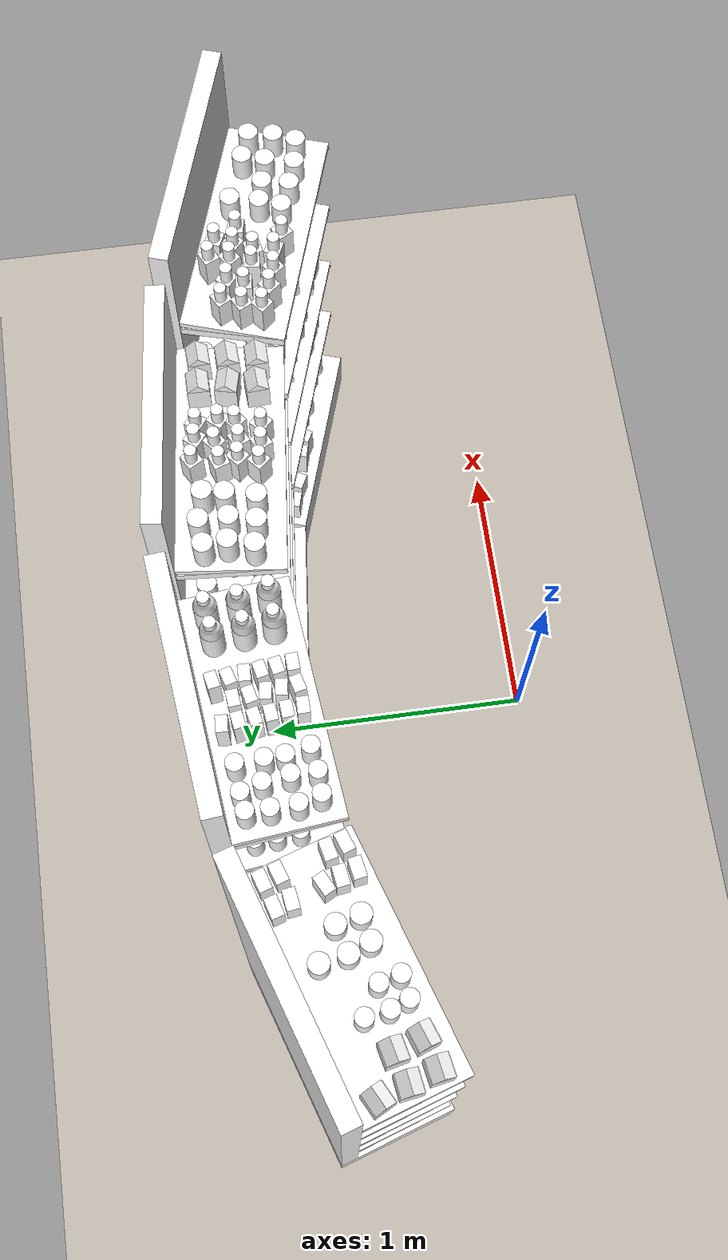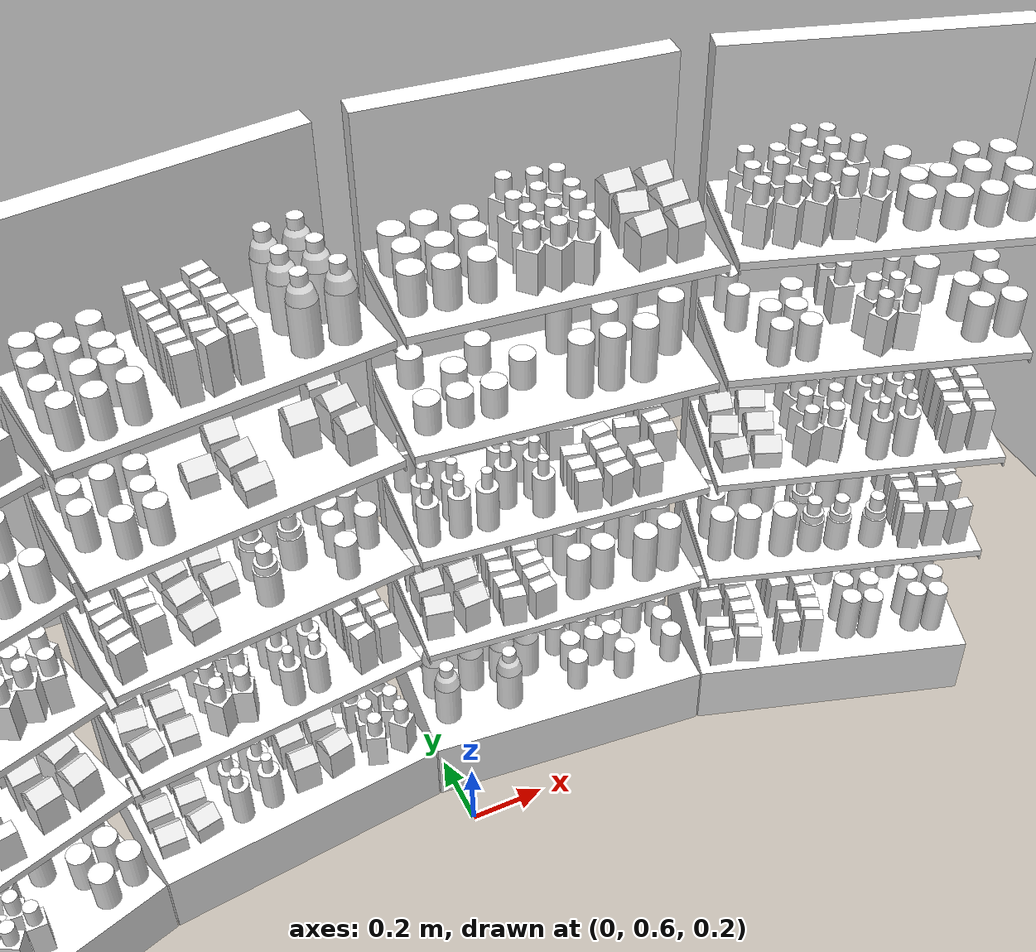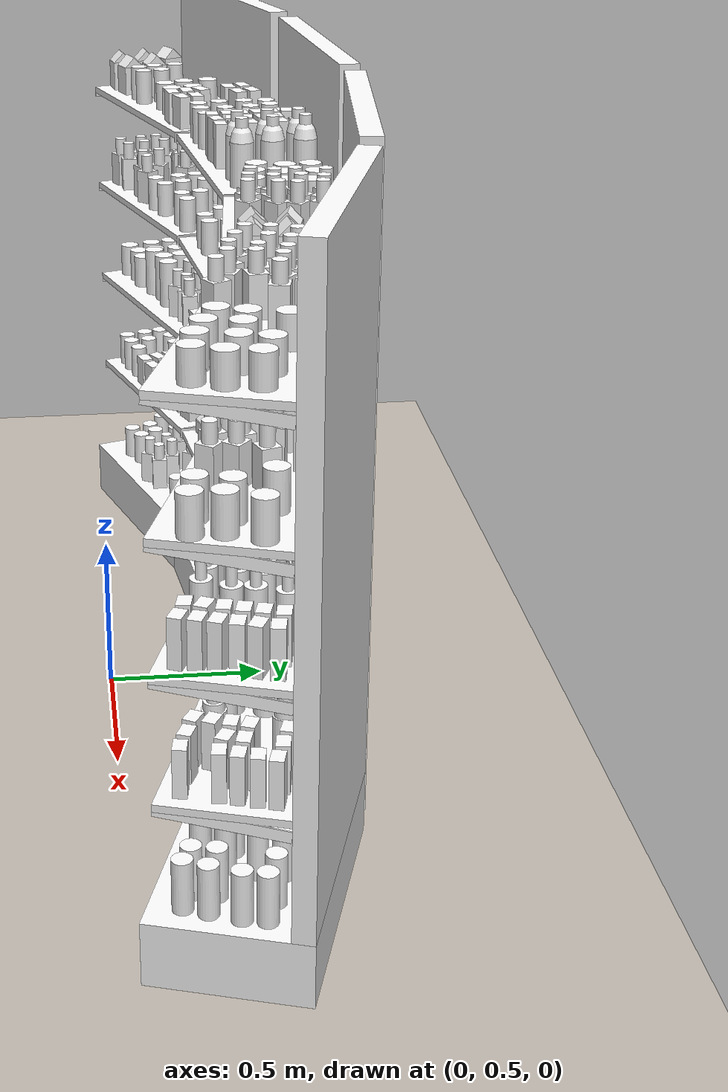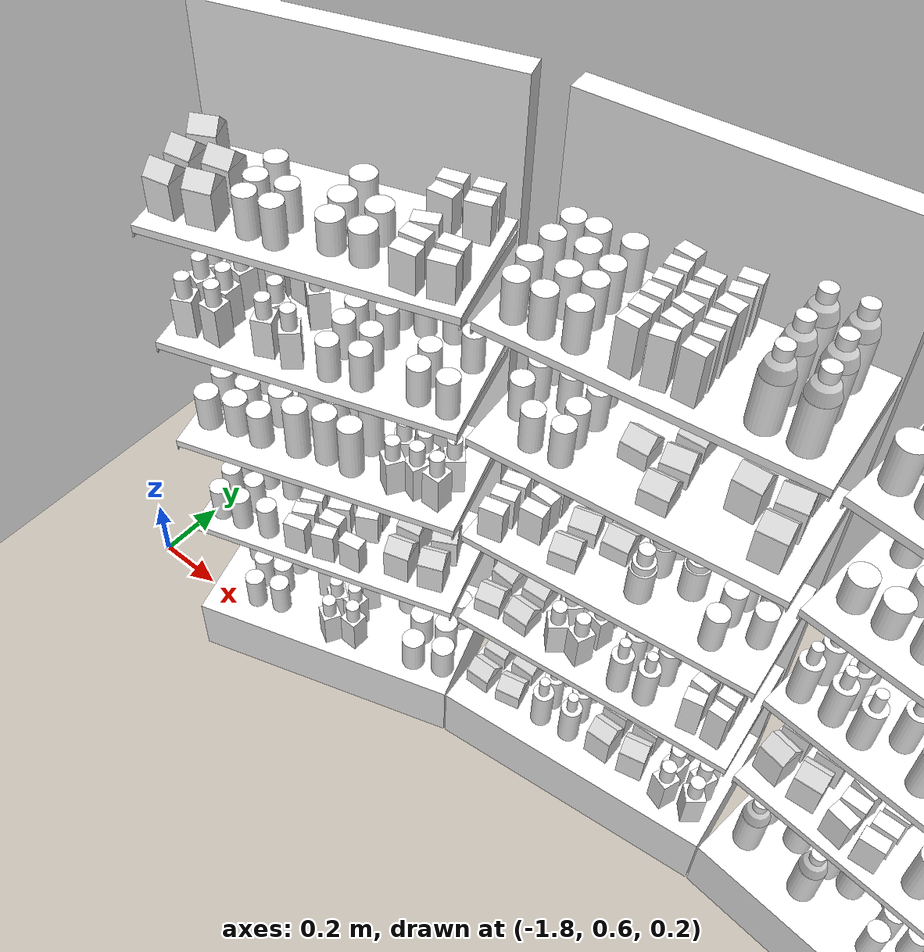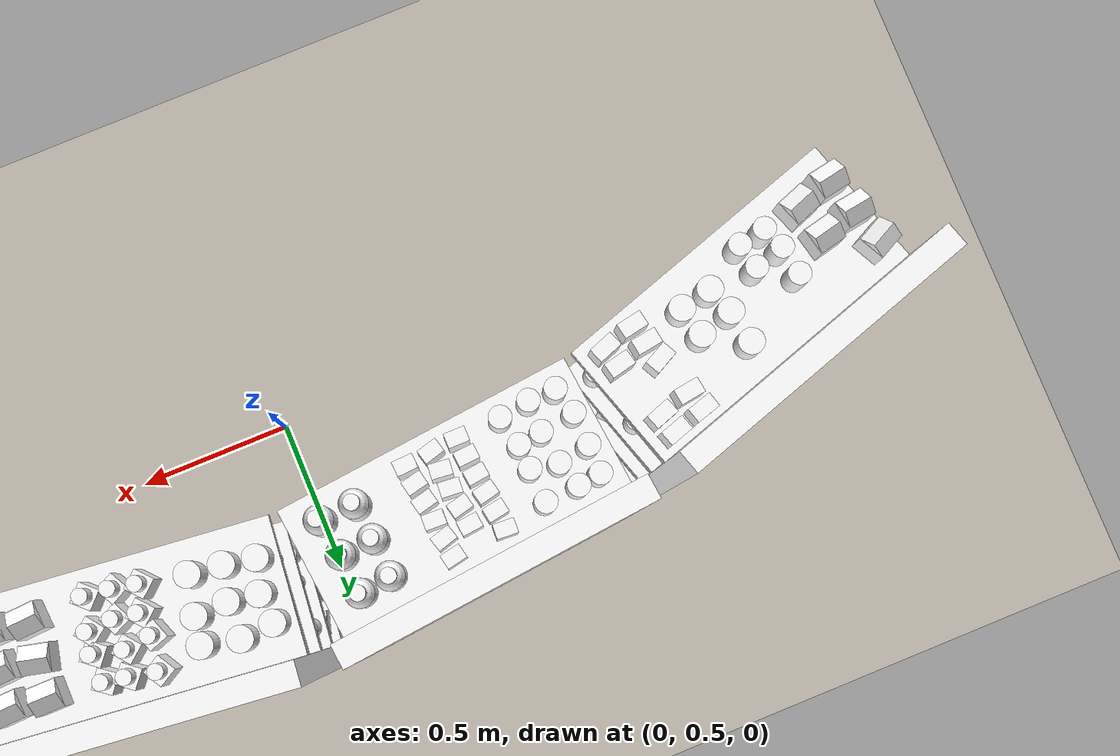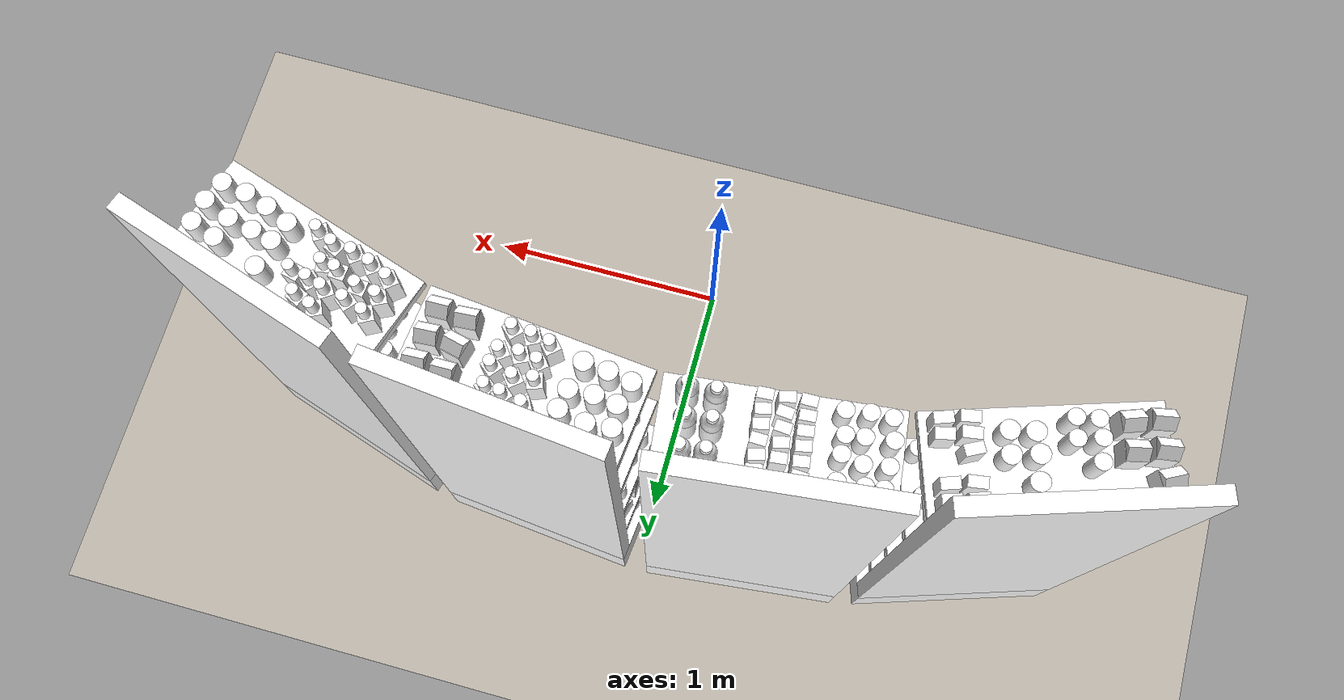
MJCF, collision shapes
<mujoco>
  <include file="store.xml"/>
  <option  gravity="0 0 -9.8" timestep="0.01"/>
  <asset>
    <!-- mujoco can not resolve asset path when include common/materials.xml, so we add material directly for this case-->
    <texture name="motphys-ground" type="2d" file="../../common/motphys-ground.png" />
    <material name="motphys-ground" texture="motphys-ground" texuniform="true"
      texrepeat="0.4 0.4" />
  </asset>
  <worldbody>
    <geom name="floor" size="0 0 0.05" type="plane" material="motphys-ground"/>
  </worldbody>
</mujoco>
